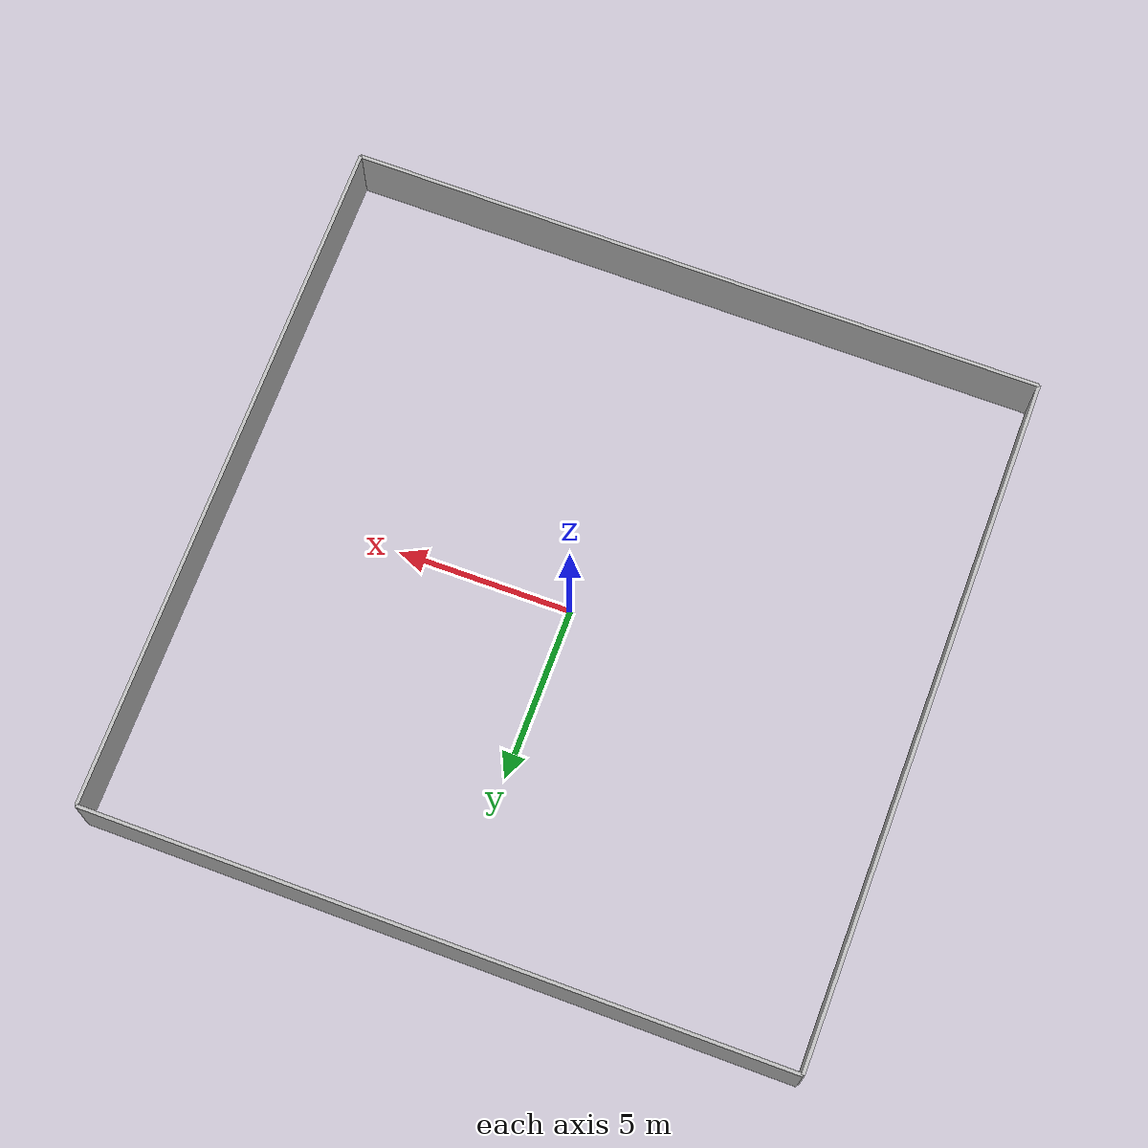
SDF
<?xml version="1.0" ?>
<sdf version="1.5">

<model name="arena_simple">
  <static>true</static>
  <link name="wall1">
    <pose>-10 0 1 0 0 0</pose>
    <must_be_base_link>1</must_be_base_link>
    <collision name="collision">
       <geometry>
         <box>
           <size>0.1 20 2</size>  <!-- adjust this to whatever you want -->
        </box>
       </geometry>
     </collision>
     <visual name="visual">
       <cast_shadows>false</cast_shadows>
       <geometry>
         <box>
          <size>0.1 20 2</size>  <!-- adjust this to whatever you want -->
          </box>
      </geometry>
     </visual>
  </link>

  <link name="wall2">
    <pose>0 10 1 0 0 1.5707</pose>
    <must_be_base_link>1</must_be_base_link>
    <collision name="collision">
       <geometry>
         <box>
           <size>0.1 20 2</size>  <!-- adjust this to whatever you want -->
        </box>
       </geometry>
     </collision>
     <visual name="visual">
       <cast_shadows>false</cast_shadows>
       <geometry>
         <box>
          <size>0.1 20 2</size>  <!-- adjust this to whatever you want -->
          </box>
      </geometry>
     </visual>
    </link>

    <link name="wall3">
    <pose>0 -10 1 0 0 1.5707</pose>
    <must_be_base_link>1</must_be_base_link>
    <collision name="collision">
       <geometry>
         <box>
           <size>0.1 20 2</size>  <!-- adjust this to whatever you want -->
        </box>
       </geometry>
     </collision>
     <visual name="visual">
       <cast_shadows>false</cast_shadows>
       <geometry>
         <box>
          <size>0.1 20 2</size>  <!-- adjust this to whatever you want -->
          </box>
      </geometry>
     </visual>
    </link>

    <link name="wall4">
    <pose>10 0 1 0 0 0</pose>
    <must_be_base_link>1</must_be_base_link>
    <collision name="collision">
       <geometry>
         <box>
           <size>0.1 20 2</size>  <!-- adjust this to whatever you want -->
        </box>
       </geometry>
     </collision>
     <visual name="visual">
       <cast_shadows>false</cast_shadows>
       <geometry>
         <box>
          <size>0.1 20 2</size>  <!-- adjust this to whatever you want -->
          </box>
      </geometry>
     </visual>
    </link>
</model>
</sdf>
